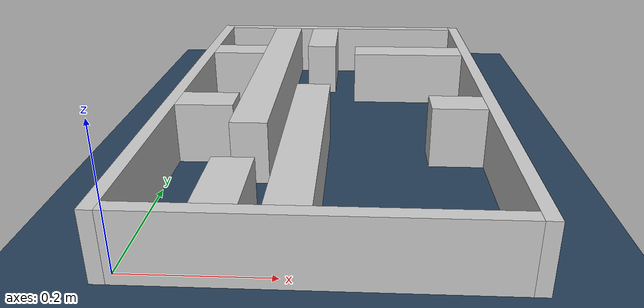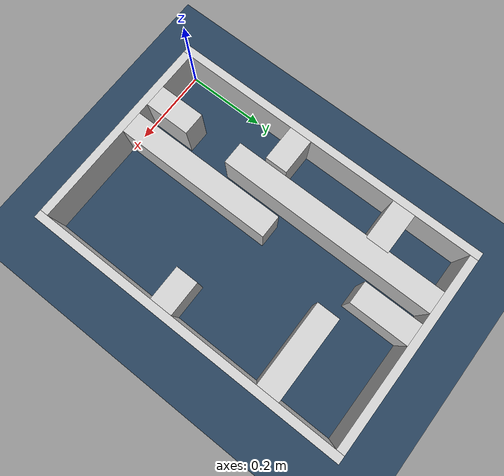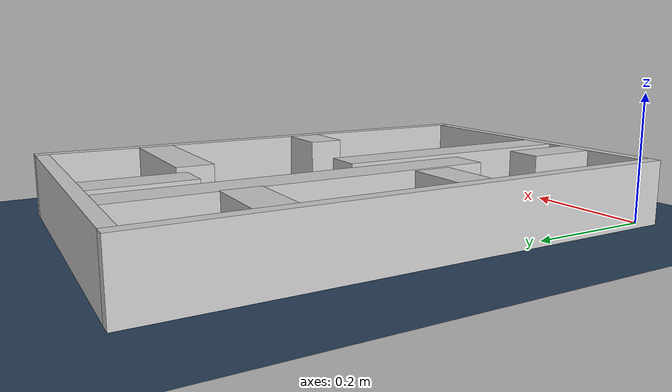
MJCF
<?xml version="1.0" ?>
<mujoco model="generated_real_template">
  <compiler angle="degree"/>
  <option timestep="0.002" integrator="implicitfast" iterations="100" cone="elliptic"/>
  <default>
    <geom density="1"/>
  </default>
  <asset>
    <texture builtin="gradient" height="3072" rgb1="0.3 0.5 0.7" rgb2="0 0 0" type="skybox" width="512"/>
    <texture builtin="checker" height="300" mark="edge" markrgb="0.8 0.8 0.8" name="groundplane" rgb1="0.2 0.3 0.4" rgb2="0.1 0.2 0.3" type="2d" width="300"/>
    <material name="groundplane" reflectance="0.2" texrepeat="5 5" texture="groundplane" texuniform="true"/>
  </asset>
  <worldbody>
    <light dir="0 0 -1" directional="true" pos="0 0 1.5"/>
    <geom name="floor" type="plane" condim="4" friction="0.5 0.005 0.001" material="groundplane" size="0 0 0.05"/>
    <body name="walls">
      <geom name="wall_boundary_left" type="box" condim="4" friction="1.0 0.005 0.0001" rgba="0.8 0.8 0.8 1" pos="-0.010000 0.387500 0.050000" euler="0 0 0.000000" size="0.010000 0.407500 0.050000"/>
      <geom name="wall_boundary_right" type="box" condim="4" friction="1.0 0.005 0.0001" rgba="0.8 0.8 0.8 1" pos="0.500000 0.387500 0.050000" euler="0 0 0.000000" size="0.010000 0.407500 0.050000"/>
      <geom name="wall_boundary_bottom" type="box" condim="4" friction="1.0 0.005 0.0001" rgba="0.8 0.8 0.8 1" pos="0.245000 -0.010000 0.050000" euler="0 0 0.000000" size="0.245000 0.010000 0.050000"/>
      <geom name="wall_boundary_top" type="box" condim="4" friction="1.0 0.005 0.0001" rgba="0.8 0.8 0.8 1" pos="0.245000 0.785000 0.050000" euler="0 0 0.000000" size="0.245000 0.010000 0.050000"/>
      <geom name="wall_inner_1_1" type="box" condim="4" friction="1.0 0.005 0.0001" rgba="0.8 0.8 0.8 1" pos="0.046272 0.323170 0.050000" euler="0 0 0.000000" size="0.046272 0.028500 0.050000"/>
      <geom name="wall_inner_1_2" type="box" condim="4" friction="1.0 0.005 0.0001" rgba="0.8 0.8 0.8 1" pos="0.446488 0.323170 0.050000" euler="0 0 0.000000" size="0.043512 0.028500 0.050000"/>
      <geom name="wall_inner_2_1" type="box" condim="4" friction="1.0 0.005 0.0001" rgba="0.8 0.8 0.8 1" pos="0.052119 0.604832 0.050000" euler="0 0 0.000000" size="0.052119 0.028500 0.050000"/>
      <geom name="wall_inner_2_2" type="box" condim="4" friction="1.0 0.005 0.0001" rgba="0.8 0.8 0.8 1" pos="0.385133 0.604832 0.050000" euler="0 0 0.000000" size="0.104867 0.028500 0.050000"/>
      <geom name="wall_inner_3_1" type="box" condim="4" friction="1.0 0.005 0.0001" rgba="0.8 0.8 0.8 1" pos="0.128173 0.058042 0.050000" euler="0 0 90.000000" size="0.058042 0.028500 0.050000"/>
      <geom name="wall_inner_3_2" type="box" condim="4" friction="1.0 0.005 0.0001" rgba="0.8 0.8 0.8 1" pos="0.128173 0.501409 0.050000" euler="0 0 90.000000" size="0.273591 0.028500 0.050000"/>
      <geom name="wall_inner_4_1" type="box" condim="4" friction="1.0 0.005 0.0001" rgba="0.8 0.8 0.8 1" pos="0.211872 0.200059 0.050000" euler="0 0 90.000000" size="0.200059 0.028500 0.050000"/>
      <geom name="wall_inner_4_2" type="box" condim="4" friction="1.0 0.005 0.0001" rgba="0.8 0.8 0.8 1" pos="0.211872 0.702218 0.050000" euler="0 0 90.000000" size="0.072782 0.028500 0.050000"/>
    </body>
  </worldbody>
</mujoco>
